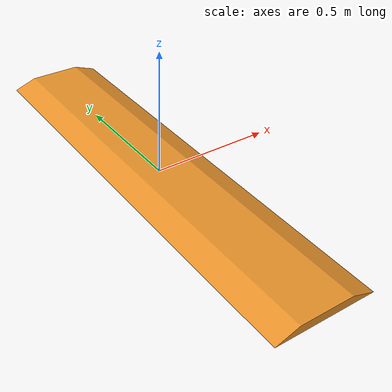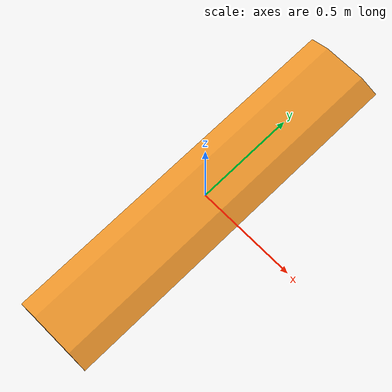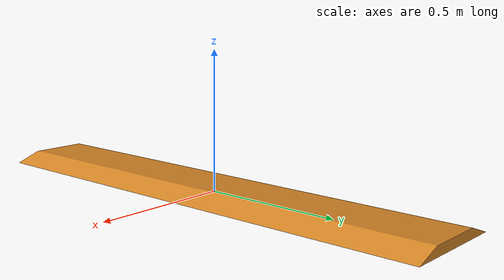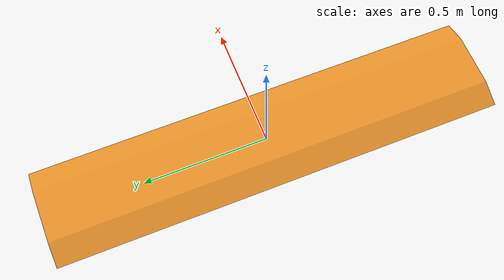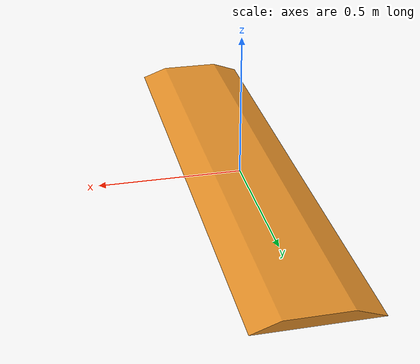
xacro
<?xml version="1.0" ?>
<robot name="Ramp" xmlns:xacro="http://www.ros.org/wiki/xacro">

<!-- Dummy Root Link -->
  <link name="base_link"/>

  <joint name="base_link_to_ramp" type="fixed">
    <parent link="base_link"/>
    <child link="ramp"/>
  </joint>

<!-- LINKS -->
    <link name="ramp">
      <inertial>
        <origin xyz="0 0 0" />
        <mass value="10"/>
        <inertia ixx="1.0" ixy="0.0" ixz="0.0" iyy="1.0" iyz="0.0" izz="1.0" />
      </inertial>
      <visual>
        <origin xyz="0.0 0.0 0.0" rpy="0 0 0" />
        <geometry>
          <mesh filename="package://bbot_description/meshes/visual/Ramp.dae"  scale="1 9 1"/>
        </geometry>
      </visual>
      <collision>
        <origin xyz="0.0 0.0 0.0" rpy="0 0 0" />
        <geometry>
          <mesh filename="package://bbot_description/meshes/collision/Ramp.stl"  scale="1 3 1"/>
        </geometry>
      </collision>
    </link>

</robot>
